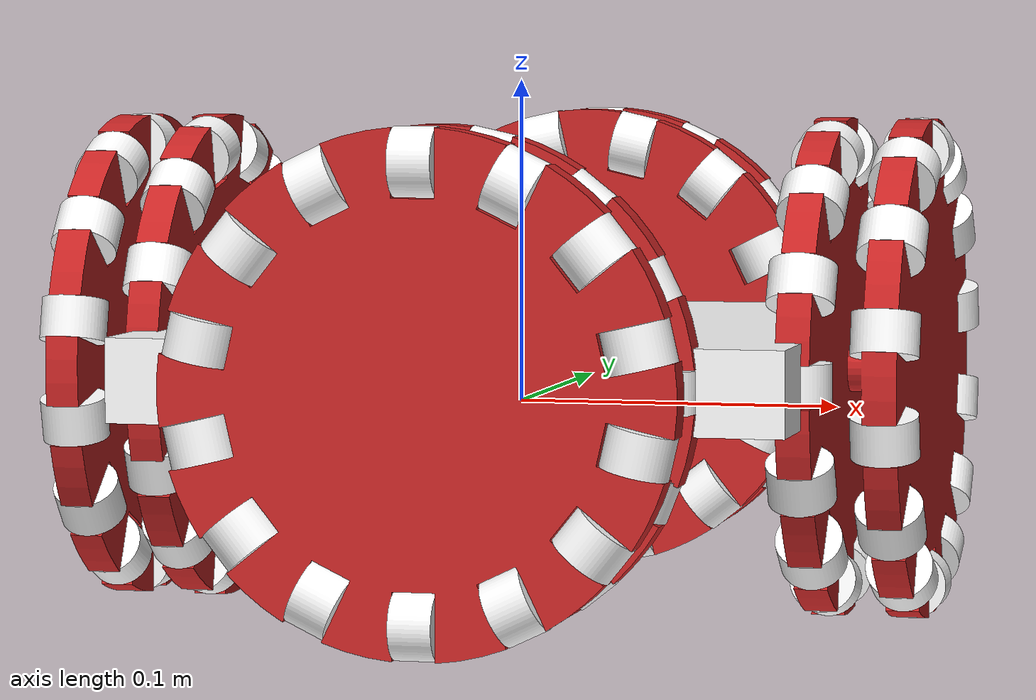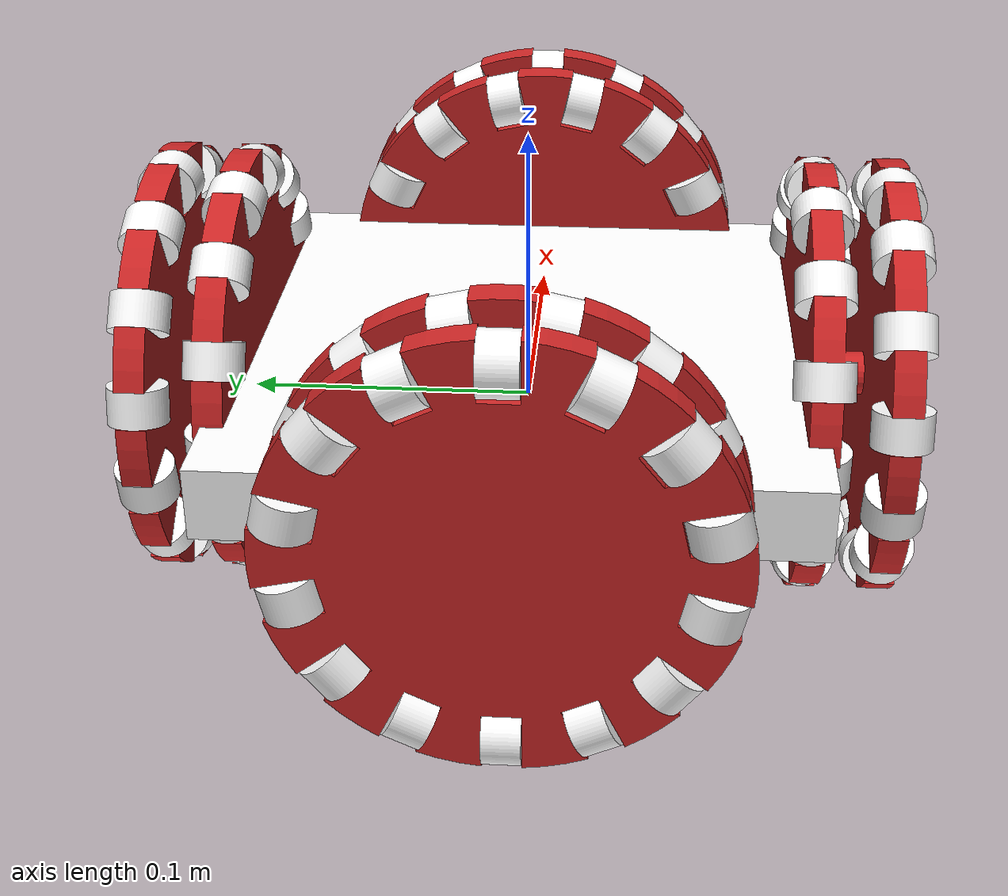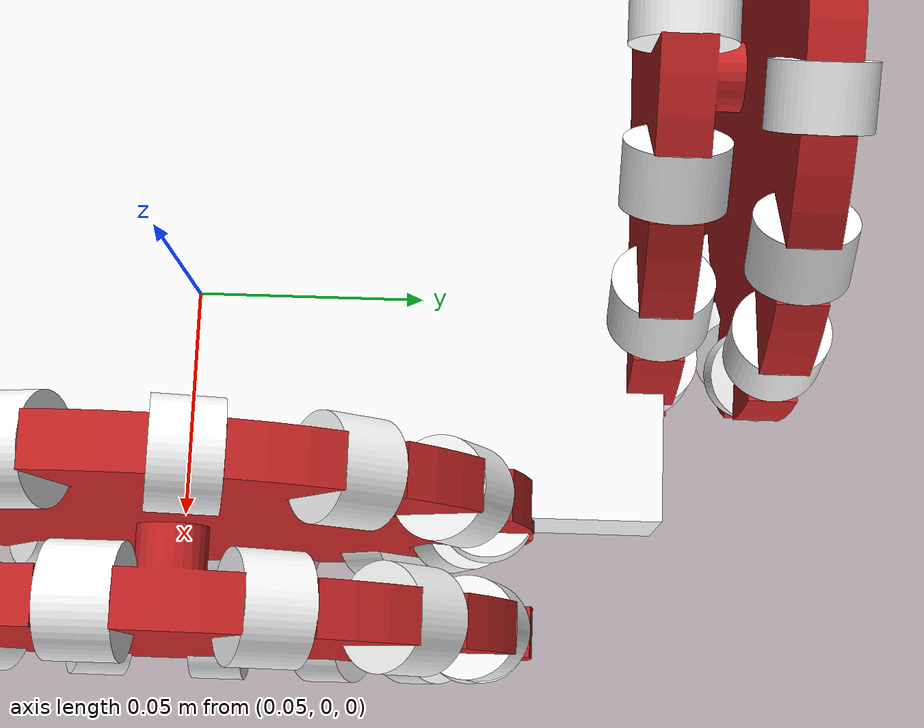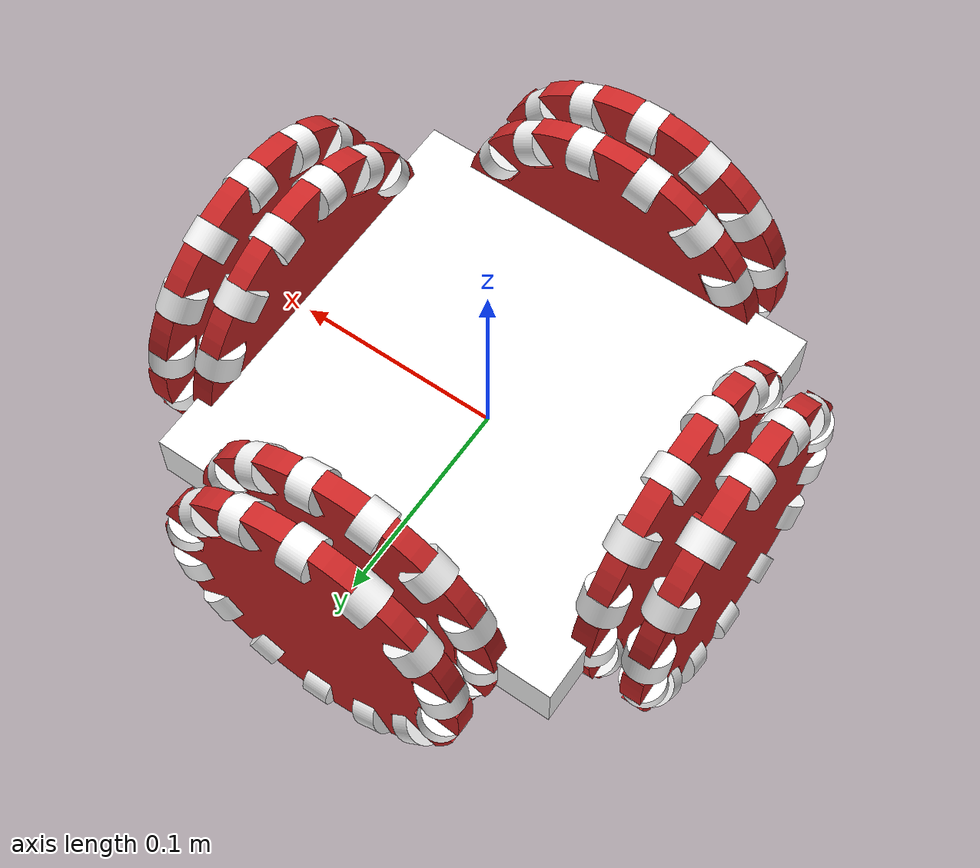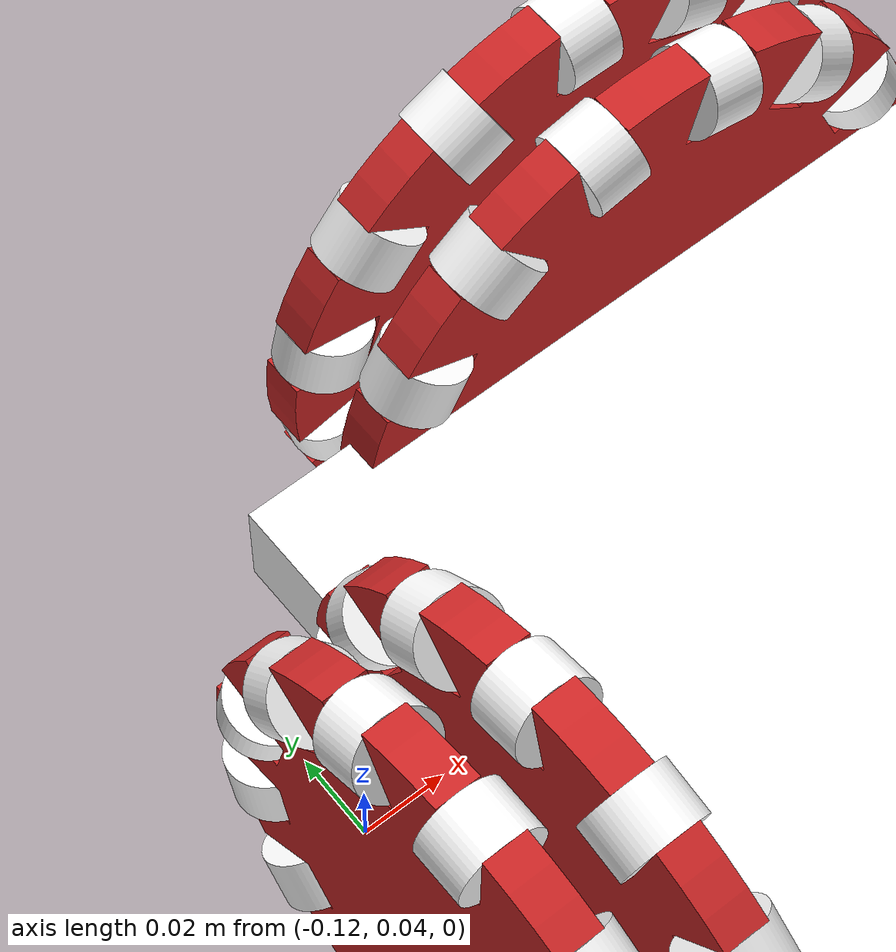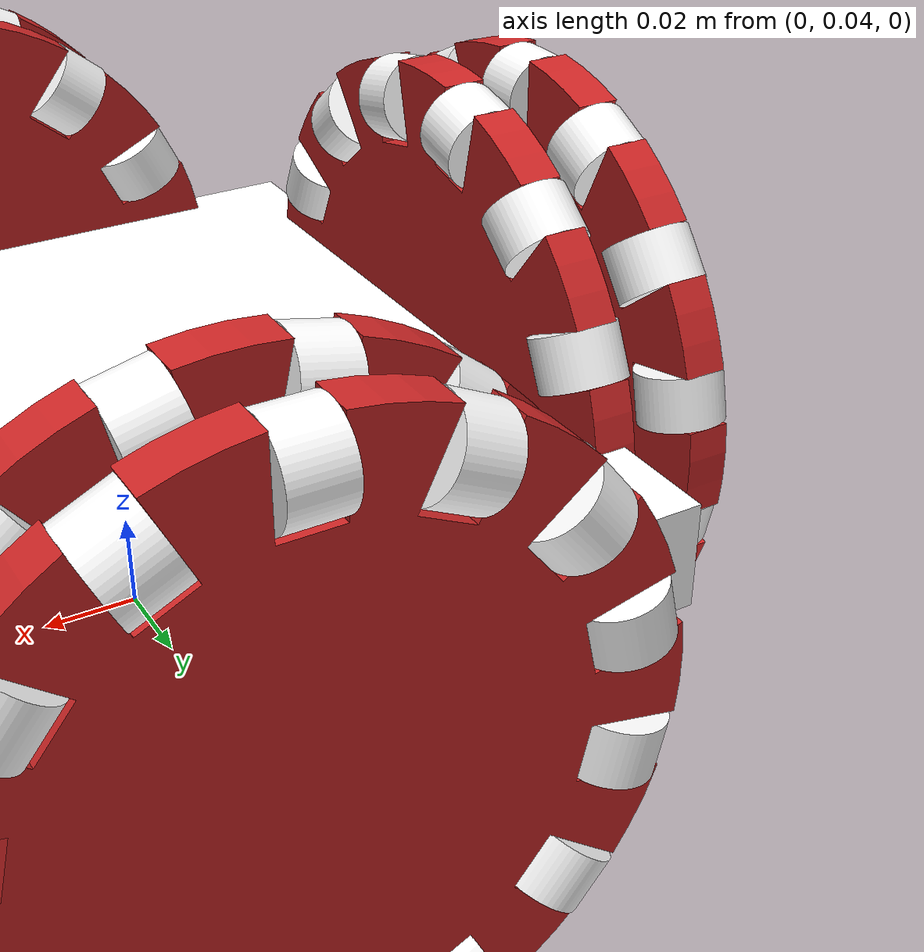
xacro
<?xml version="1.0"?>
<robot xmlns:xacro="http://www.ros.org/wiki/xacro" name="omni_sim">

        <xacro:include filename="wheels/full_omni_wheel.urdf.xacro"/>
        <xacro:include filename="wheels/omni_wheel.gazebo.xacro"/>
        <xacro:include filename="wheels/omni_wheel.transmission.xacro"/>
        <xacro:include filename="wheels/roller.transmission.xacro"/>
        <xacro:include filename="wheels/roller.gazebo.xacro"/>
        <xacro:include filename="inertial_macros.xacro"/>

        <!--materials-->
        <material name="white">
            <color rgba="1. 1. 1. 1."/>
        </material>
        <material name="red">
            <color rgba="1 0.2 0.2 1"/>
        </material>
        <material name="blue">
            <color rgba="0.2 0.2 1 1"/>
        </material>
        <material name="grey">
            <color rgba="0.5 0.5 0.5 1."/>
        </material>

        <!--BASE-->
        <link name="base_link">
        </link>

        <!--CHASSIS-->
        <joint name="chassis_joint" type="fixed">
            <parent link="base_link"/>
            <child link="chassis"/>
            <origin xyz="-0.1016 0.0 0.0"/>
        </joint>

        <link name="chassis">

            <visual>
                <origin xyz="0.1016 0.0 0.0127"/>
                <geometry>
                    <box size="0.2032 0.2032 0.0254"/>
                </geometry>
                <material name="white"/>
            </visual>

            <collision>
                <origin xyz="0.1016 0.0 0.0127"/>
                <geometry>
                    <box size="0.2032 0.2032 0.0254"/>
                </geometry>
            </collision>

            <xacro:inertial_box mass="100" x="0.2032" y="0.2032" z="0.0254">
                <origin xyz="0.1016 0.0 0.0127" rpy="0.0 0.0 0.0"/>
            </xacro:inertial_box>

        </link>
        <!-- Gazebo colors -->
        <gazebo reference="chassis">
            <material>Gazebo/White</material>
        </gazebo>

        <!-- Wheels -->
        <!--FRONT -->
        <xacro:full_omni_wheel prefix="F" parent="base_link">
            <origin xyz="${0.1016+0.01016} 0.0 0.0127" rpy="${pi/2} 0.0 ${pi/2}"/>
            <axis xyz="0.0 0.0 -1."/>
        </xacro:full_omni_wheel>
        <!--LEFT -->
        <xacro:full_omni_wheel prefix="L" parent="base_link">
            <origin xyz="0.0 ${0.1016+0.01016} 0.0127" rpy="${pi/2} 0.0 ${pi}"/>
            <axis xyz="0.0 0.0 -1."/>
        </xacro:full_omni_wheel>
        <!--BACK/REAR -->
        <xacro:full_omni_wheel prefix="B" parent="base_link">
            <origin xyz="-${0.1016+0.01016} 0.0 0.0127" rpy="${pi/2} 0.0 -${pi/2}"/>
            <axis xyz="0.0 0.0 -1."/>
        </xacro:full_omni_wheel>
        <!--RIGHT -->
        <xacro:full_omni_wheel prefix="R" parent="base_link">
            <origin xyz="0.0 -${0.1016+0.01016} 0.0127" rpy="${pi/2} 0.0 ${0.0}"/>
            <axis xyz="0.0 0.0 -1."/>
        </xacro:full_omni_wheel>

    <!-- GAZEBO -->
        <gazebo>
            <plugin name="gazebo_ros2_control" filename="libgazebo_ros2_control.so">
                <parameters>/home/r1/ros2_ws/src/omni_sim/config/controller.yaml</parameters>
            </plugin>
            <plugin name="gazebo_ros_p3d" filename="libgazebo_ros_p3d.so">
                <!-- Replace camelCase elements with camel_case ones -->
                <body_name>base_link</body_name>
                <frame_name>world</frame_name>
                <update_rate>20</update_rate>
                <xyz_offset>0 0 0</xyz_offset>
                <rpy_offset>0.0 0.0 0.0</rpy_offset>
                <gaussian_noise>0.01</gaussian_noise>

            </plugin>
        </gazebo>
    <!-- ROS2 CONTROL -->
    <ros2_control name="GazeboSystem" type="system">
        <hardware>
            <plugin>gazebo_ros2_control/GazeboSystem</plugin>
        </hardware>
        <joint name="F_wheel_joint">
            <command_interface name="velocity">
            </command_interface>
            <state_interface name="velocity"/>
        </joint>
        <joint name="L_wheel_joint">
            <command_interface name="velocity">
            </command_interface>
            <state_interface name="velocity"/>
        </joint>
        <joint name="B_wheel_joint">
            <command_interface name="velocity">
            </command_interface>
            <state_interface name="velocity"/>
        </joint>
        <joint name="R_wheel_joint">
            <command_interface name="velocity">
            </command_interface>
            <state_interface name="velocity"/>
        </joint>
    </ros2_control>
</robot>

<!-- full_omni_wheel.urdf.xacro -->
<robot xmlns:xacro="http://www.ros.org/wiki/xacro">

  <xacro:include filename="omni_wheel.urdf.xacro"/>
  <xacro:include filename="roller.urdf.xacro"/>

  <xacro:macro name="full_omni_wheel" params="prefix parent *joint_origin *joint_axis">
            <xacro:wheel_v0 prefix="${prefix}" parent="base_link">
                <xacro:insert_block name="joint_origin"/>
                <xacro:insert_block name="joint_axis"/>
            </xacro:wheel_v0>

            <joint name="${prefix}_roller_group_joint" type="fixed">
                <origin xyz="0 0 0" rpy="${-pi/2} 0.0 0"/>
                <parent link="${prefix}_wheel_link"/>
                <child link="${prefix}_roller_group_link"/>
            </joint>

            <link name="${prefix}_roller_group_link">
                <inertial>
                    <mass value="0.00001"/>
                    <inertia ixx="${(2/5) * 0.00001 * (0.001*0.001)}" ixy="0.0" ixz="0.0"
                        iyy="${(2/5) * 0.00001 * (0.001*0.001)}" iyz="0.0"
                        izz="${(2/5) * 0.00001 * (0.001*0.001)}" />
                    <origin xyz="0.0 0.0 0.0"/>
                </inertial>
            </link>
            <gazebo reference="${prefix}_roller_group_link">
                <selfCollide>false</selfCollide>
                <material>Gazebo/Red</material>
            </gazebo>

            <xacro:roller_v0 prefix="${prefix}_r1" parent="${prefix}_roller_group_link">
                <origin xyz="0 -0.0127 0.066041" rpy="0 0 0"/>
            </xacro:roller_v0>
            <xacro:roller_v0 prefix="${prefix}_r2" parent="${prefix}_roller_group_link">
                <origin xyz="0.064262 -0.0127 -0.014731" rpy="-3.14106 1.34635 -3.14117"/>
            </xacro:roller_v0>
            <xacro:roller_v0 prefix="${prefix}_r3" parent="${prefix}_roller_group_link">
                <origin xyz="-0.064262 -0.0127 -0.014731" rpy="-3.14106 -1.346396852 3.14117"/>
            </xacro:roller_v0>
            <xacro:roller_v0 prefix="${prefix}_r4" parent="${prefix}_roller_group_link">
                <origin xyz="-0.051562 -0.0127 -0.041147" rpy="-3.14134 -0.897624 3.14147"/>
            </xacro:roller_v0>
            <xacro:roller_v0 prefix="${prefix}_r5" parent="${prefix}_roller_group_link">
                <origin xyz="0.051562 -0.0127 -0.041147" rpy="-3.14134 0.897624 -3.14147"/>
            </xacro:roller_v0>
            <xacro:roller_v0 prefix="${prefix}_r6" parent="${prefix}_roller_group_link">
                <origin xyz="-0.028702 -0.0127 -0.059435" rpy="-3.14139 -0.448725 3.14155"/>
            </xacro:roller_v0>
            <xacro:roller_v0 prefix="${prefix}_r7" parent="${prefix}_roller_group_link">
                <origin xyz="0.028702 -0.0127 -0.059435" rpy="-3.14139 0.448793 -3.14155"/>
            </xacro:roller_v0>
            <xacro:roller_v0 prefix="${prefix}_r8" parent="${prefix}_roller_group_link">
                <origin xyz="0.014478 0.0127 0.064515" rpy="0 0.220958 0"/>
            </xacro:roller_v0>
            <xacro:roller_v0 prefix="${prefix}_r9" parent="${prefix}_roller_group_link">
                <origin xyz="-0.014478 0.0127 -0.064517" rpy="-3.1414 -0.220957 3.14157"/>
            </xacro:roller_v0>
            <xacro:roller_v0 prefix="${prefix}_r10" parent="${prefix}_roller_group_link">
                <origin xyz="0.040894 0.0127 0.051815" rpy="-2.7e-05 0.669682 -7.6e-05"/>
            </xacro:roller_v0>
            <xacro:roller_v0 prefix="${prefix}_r11" parent="${prefix}_roller_group_link">
                <origin xyz="-0.040894 0.0127 -0.051817" rpy="-3.14137 -0.669677 3.14152"/>
            </xacro:roller_v0>
            <xacro:roller_v0 prefix="${prefix}_r12" parent="${prefix}_roller_group_link">
                <origin xyz="0.059436 0.0127 0.028955" rpy="-0.000124 1.11858 -0.000198"/>
            </xacro:roller_v0>
            <xacro:roller_v0 prefix="${prefix}_r13" parent="${prefix}_roller_group_link">
                <origin xyz="-0.059436 0.0127 -0.028957" rpy="-3.14128 -1.11858 3.14139"/>
            </xacro:roller_v0>
            <xacro:roller_v0 prefix="${prefix}_r14" parent="${prefix}_roller_group_link">
                <origin xyz="0.06604 0.0127 -0.000001" rpy="-0.785326 1.57066 -0.785422"/>
            </xacro:roller_v0>
            <xacro:roller_v0 prefix="${prefix}_r15" parent="${prefix}_roller_group_link">
                <origin xyz="-0.06604 0.0127 -0.000001" rpy="-0.785326 -1.57066 0.785422"/>
            </xacro:roller_v0>
            <xacro:roller_v0 prefix="${prefix}_r16" parent="${prefix}_roller_group_link">
                <origin xyz="-0.014986 0.0127 0.064261" rpy="-3e-06 -0.22794 2.2e-05"/>
            </xacro:roller_v0>
            <xacro:roller_v0 prefix="${prefix}_r17" parent="${prefix}_roller_group_link">
                <origin xyz="0.014986 0.0127 -0.064263" rpy="-3.1414 0.227937 -3.14157"/>
            </xacro:roller_v0>
            <xacro:roller_v0 prefix="${prefix}_r18" parent="${prefix}_roller_group_link">
                <origin xyz="-0.041402 0.0127 0.051561" rpy="-2.7e-05 -0.676664 7.7e-05"/>
            </xacro:roller_v0>
            <xacro:roller_v0 prefix="${prefix}_r19" parent="${prefix}_roller_group_link">
                <origin xyz="0.041402 0.0127 -0.051563" rpy="-3.14137 0.676607 -3.14152"/>
            </xacro:roller_v0>
            <xacro:roller_v0 prefix="${prefix}_r20" parent="${prefix}_roller_group_link">
                <origin xyz="0.05969 0.0127 -0.028449" rpy="-3.14123 1.1952 -3.14135"/>
            </xacro:roller_v0>
            <xacro:roller_v0 prefix="${prefix}_r21" parent="${prefix}_roller_group_link">
                <origin xyz="-0.028702 -0.0127 0.059437" rpy="-1.1e-05 -0.448724 4.6e-05"/>
            </xacro:roller_v0>
            <xacro:roller_v0 prefix="${prefix}_r22" parent="${prefix}_roller_group_link">
                <origin xyz="-0.05969 0.0127 0.028447" rpy="-0.000123 -1.11701 0.000198"/>
            </xacro:roller_v0>
            <xacro:roller_v0 prefix="${prefix}_r23" parent="${prefix}_roller_group_link">
                <origin xyz="0.028702 -0.0127 0.059437" rpy="-1.1e-05 0.448724 -4.6e-05"/>
            </xacro:roller_v0>
            <xacro:roller_v0 prefix="${prefix}_r24" parent="${prefix}_roller_group_link">
                <origin xyz="-0.051562 -0.0127 0.041149" rpy="-5.8e-05 -0.897622 0.000121"/>
            </xacro:roller_v0>
            <xacro:roller_v0 prefix="${prefix}_r25" parent="${prefix}_roller_group_link">
                <origin xyz="0.051562 -0.0127 0.041149" rpy="-5.8e-05 0.897622 -0.000121"/>
            </xacro:roller_v0>
            <xacro:roller_v0 prefix="${prefix}_r26" parent="${prefix}_roller_group_link">
                <origin xyz="-0.064262 -0.0127 0.014733" rpy="-0.000337 -1.34635 0.000422"/>
            </xacro:roller_v0>
            <xacro:roller_v0 prefix="${prefix}_r27" parent="${prefix}_roller_group_link">
                <origin xyz="0.064262 -0.0127 0.014733" rpy="-0.000337 1.34635 -0.000422"/>
            </xacro:roller_v0>
            <xacro:roller_v0 prefix="${prefix}_r28" parent="${prefix}_roller_group_link">
                <origin xyz="0 -0.0127 -0.066039" rpy="-3.1414 3e-06 -3.14159"/>
            </xacro:roller_v0>

            <!-- TRANSMISSIONS -->
            <xacro:wheel_trans_v0 prefix="${prefix}"/>

            <xacro:wheel_gazebo_v0 prefix="${prefix}"/>
  </xacro:macro>

</robot>

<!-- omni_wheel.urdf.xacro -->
<robot xmlns:xacro="http://www.ros.org/wiki/xacro">

  <xacro:macro name="wheel_v0" params="prefix parent *joint_origin *joint_axis">
	<joint name="${prefix}_wheel_joint" type="continuous">
	  <xacro:insert_block name="joint_origin"/>
	  <parent link="${parent}"/>
	  <child link="${prefix}_wheel_link"/>
          <limit effort="100" velocity="100"/>
	  <xacro:insert_block name="joint_axis"/>
	</joint>

	<link name="${prefix}_wheel_link">
	  <visual>
      <geometry>
        <mesh filename="package://omni_sim/description/meshes/hub.dae"/>
      </geometry>
	  </visual>
	  <collision>
      <geometry>
        <mesh filename="package://omni_sim/description/meshes/hub.stl"/>
      </geometry>
	  </collision>
	  <inertial>
      <origin xyz="0.0 -0.011 -0.0"/>
      <mass value="0.5"/>
      <inertia ixx="0.166667" ixy="0" ixz="0" iyy="0.166667" iyz="0" izz="0.166667"/>
	  </inertial>

      <surface>
        <friction>
          <ode>
            <mu1>1</mu1>
            <mu2>1</mu2>
            <kp>1e15</kp>
            <kd>1e13</kd>
          </ode>
        </friction>
        <bounce>
          <restitution_coefficient>0</restitution_coefficient>
          <threshold>1e+06</threshold>
        </bounce>
        <contact>
          <ode>
            <max_vel>10</max_vel>
          </ode>
        </contact>
      </surface>
	</link>

  </xacro:macro>

</robot>

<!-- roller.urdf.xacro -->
<robot xmlns:xacro="http://www.ros.org/wiki/xacro">

  <xacro:macro name="roller_v0" params="prefix parent *joint_origin">
	<joint name="${prefix}_roller_joint" type="continuous">
	  <xacro:insert_block name="joint_origin"/>
	  <parent link="${parent}"/>
	  <child link="${prefix}_roller_link"/>
    <axis xyz="1 0 0"/>
	</joint>

	<link name="${prefix}_roller_link">
	  <visual>
      <geometry>
        <mesh filename="package://omni_sim/description/meshes/roller.dae"/>
      </geometry>
      <material name="white"/>
	  </visual>
	  <collision>
        <max_contacts>10</max_contacts>
		<geometry>
		  <mesh filename="package://omni_sim/description/meshes/roller.stl"/>
		</geometry>
	  </collision>
	  <inertial>
      <origin xyz="0.0 0.0 0.0"/>
      <mass value="0.009"/>
      <inertia ixx="0.166667" ixy="0" ixz="0" iyy="0.166667" iyz="0" izz="0.166667"/>
	  </inertial>

    <surface>
      <friction>
          <ode>
            <mu>1</mu>
            <mu2>0</mu2>
            <kp>1e15</kp>
            <kd>1e13</kd>
          </ode>
      </friction>
    </surface>
	</link>
  </xacro:macro>

</robot>
